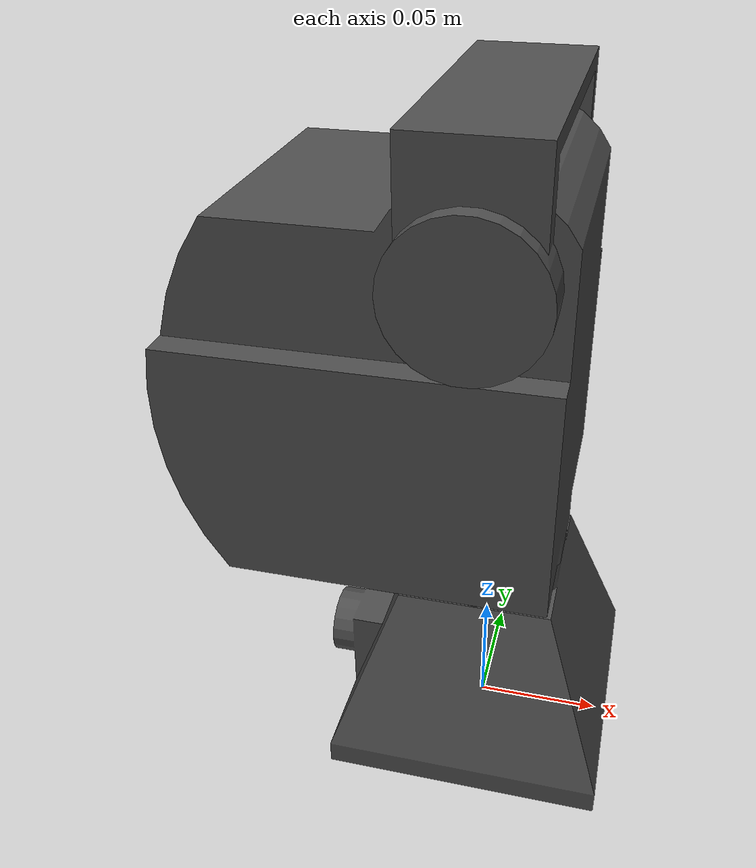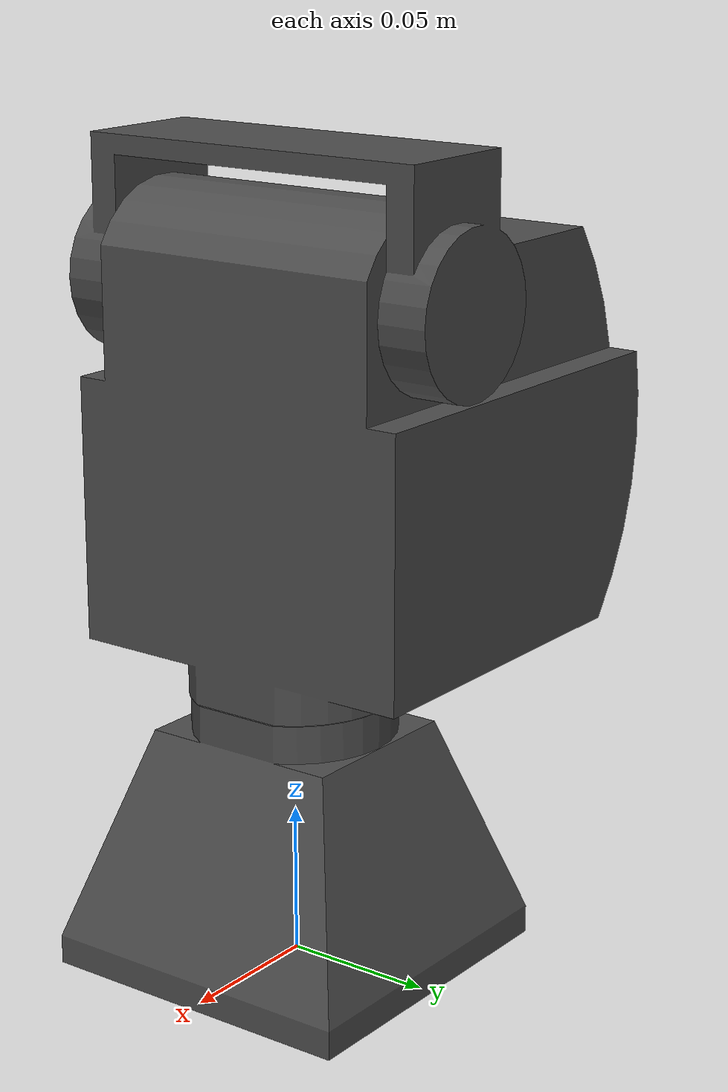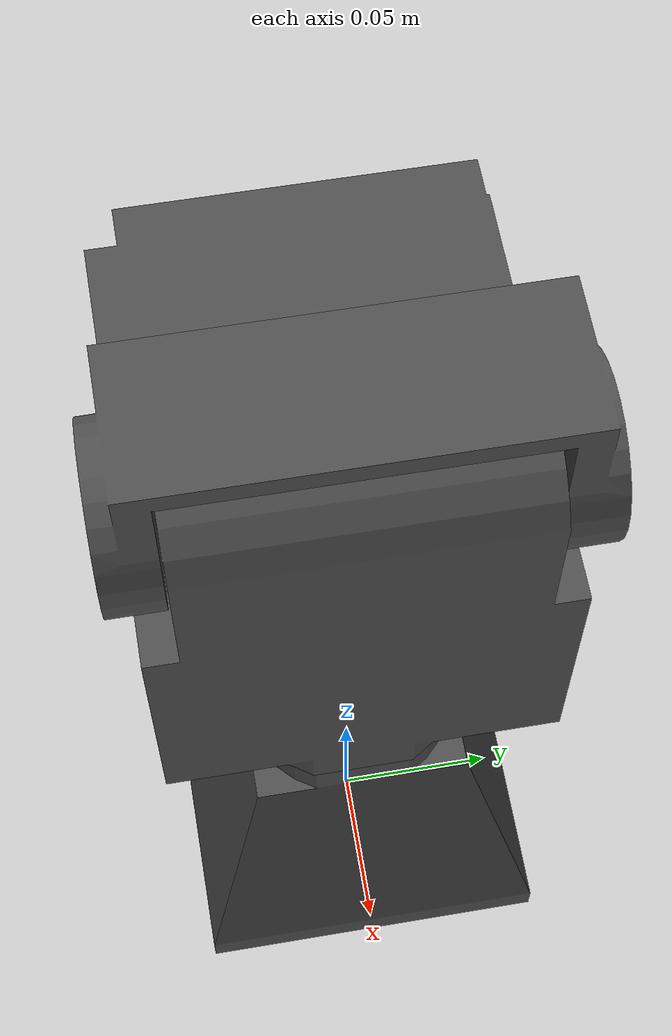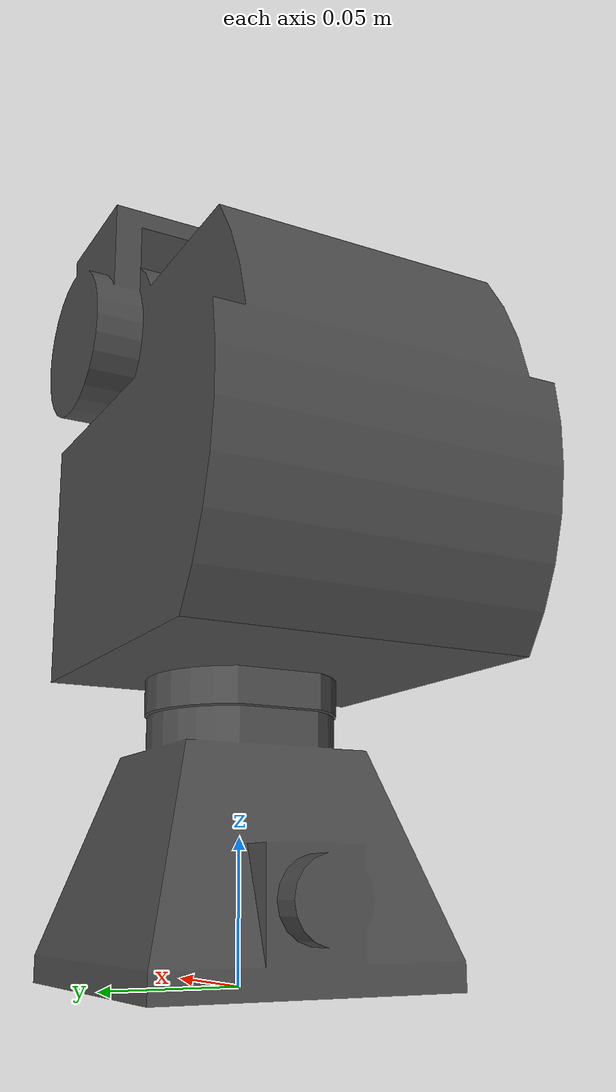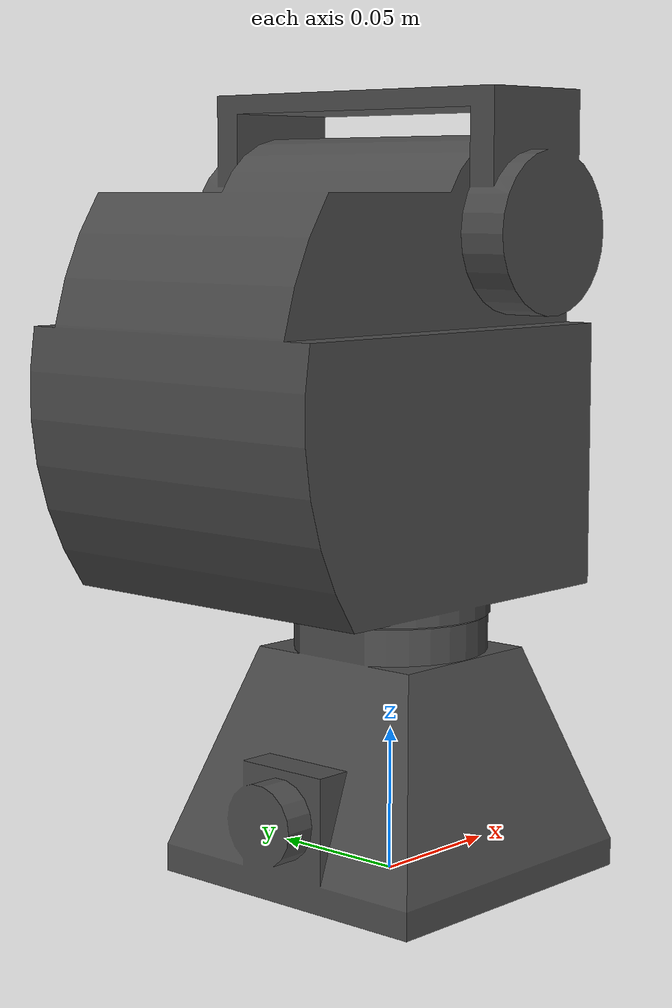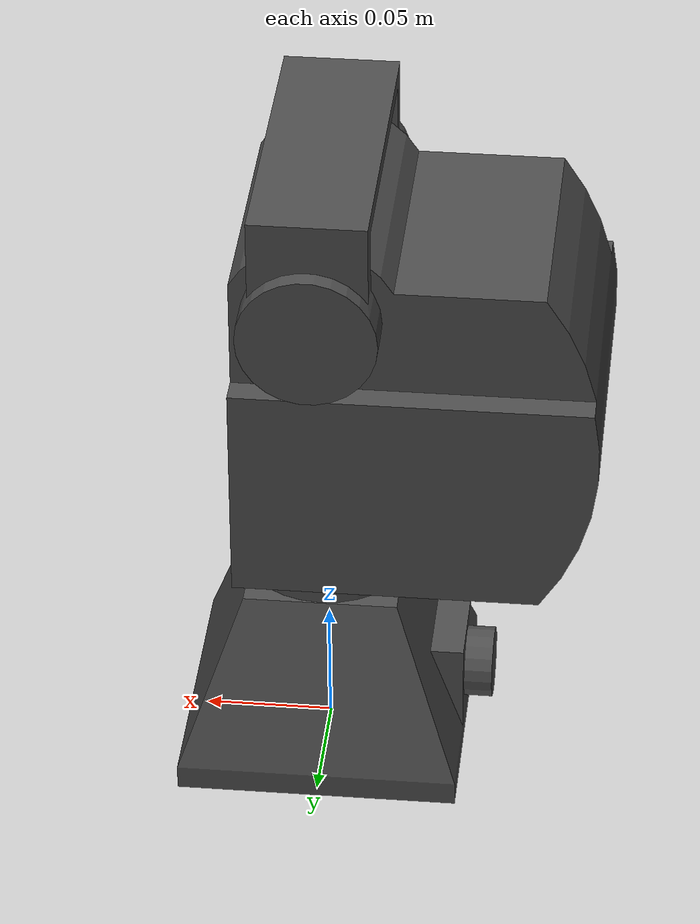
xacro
<?xml version="1.0"?>
<robot name="ptu_d48"
       xmlns:xacro="http://ros.org/wiki/xacro">
  <link name="base_link" />

  <!-- Include and invoke the macro which creates a D48 -->
  <xacro:include filename="d48.urdf.xacro" />
  <ptu_d48 name="ptu" />

  <!-- Create a fixed joint to connect the PTU to the rest of the robot -->
  <joint name="base_to_ptu_base" type="fixed">
    <parent link="base_link"/>
    <child link="ptu_base_link"/>
    <origin xyz="0 0 0"/>
  </joint>

  <!-- If you had a lidar or some other device mounted on the PTU, you would create another
       fixed joint here between the ptu_mount link and the origin of the device. -->
</robot>

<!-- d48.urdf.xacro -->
<robot name="ptu_d48"
       xmlns:xacro="http://ros.org/wiki/xacro">
  <xacro:property name="pan_velocity" value="1.0" />
  <xacro:property name="pan_range" value="2.775" />
  <xacro:property name="tilt_velocity" value="1.0" />
  <xacro:property name="tilt_up_range" value="0.52" />
  <xacro:property name="tilt_down_range" value="0.82" />
  <xacro:property name="joint_effort" value="30" />

  <xacro:macro name="ptu_d48" params="name">
    <link name="${name}_base_link">
      <visual>
        <material name="ptu_body_color">
          <color rgba="0.3 0.3 0.3 1.0" />
        </material>
        <geometry>
          <mesh filename="package://flir_ptu_description/urdf/meshes/d48_ptu_base.STL"/>
        </geometry>
        <origin xyz="0 0 0" />
      </visual>
    </link>

    <link name="${name}_pan_link">
      <visual>
        <material name="ptu_body_color">
          <color rgba="0.3 0.3 0.3 1.0" />
        </material>
        <geometry>
          <mesh filename="package://flir_ptu_description/urdf/meshes/d48_ptu_body.STL"/>
        </geometry>
        <origin xyz="0 0 0" />
      </visual>
    </link>

    <link name="${name}_tilt_link">
      <visual>
        <material name="ptu_body_color">
          <color rgba="0.3 0.3 0.3 1.0" />
        </material>
        <geometry>
          <mesh filename="package://flir_ptu_description/urdf/meshes/d48_ptu_mount.STL"/>
        </geometry>
        <origin xyz="0 0 0" />
      </visual>
    </link>

    <link name="${name}_mount_link" />

    <!-- There's an offset between the origin of the pan joint and the origin of
         the overall device, which is between the mounting screws on its base. -->
    <joint name="${name}_pan" type="revolute">
      <parent link="${name}_base_link"/>
      <child link="${name}_pan_link"/>
      <origin xyz="0 0 0.092"/>
      <axis xyz="0 0 -1" />
      <limit lower="${pan_range}" upper="${-pan_range}"
             effort="${joint_effort}" velocity="${pan_velocity}" />
    </joint>

    <!-- The pan joint -->
    <joint name="${name}_tilt" type="revolute">
      <parent link="${name}_pan_link" />
      <origin xyz="0 0 0.13" />
      <child link="${name}_tilt_link" />
      <axis xyz="0 -1 0" />
      <limit lower="${-tilt_down_range}" upper="${tilt_up_range}"
             effort="${joint_effort}" velocity="${tilt_velocity}" />
    </joint>

    <!-- Fixed joint to provide a convenient attachment point for accessories. -->
    <joint name="${name}_mount" type="fixed">
      <parent link="${name}_tilt_link"/>
      <child link="${name}_mount_link"/>
      <origin xyz="0 0 0.046" />
    </joint>
  </xacro:macro>
</robot>
